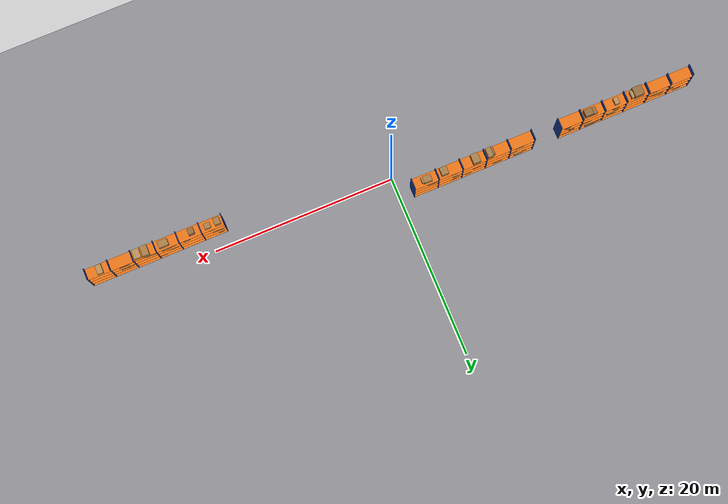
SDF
<sdf version="1.9">
 <world name="warehouse">
  <model name="ground_plane">
   <static>true</static>
   <link name="link">
    <collision name="collision">
     <geometry><plane><normal>0 0 1</normal><size>1 1</size></plane></geometry>
    </collision>
    <visual name="visual">
     <geometry><plane><normal>0 0 1</normal><size>200 100</size></plane></geometry>
     <material>
      <ambient>0.55 0.55 0.57 1</ambient>
      <diffuse>0.55 0.55 0.57 1</diffuse>
      <specular>0.1 0.1 0.1 1</specular>
     </material>
    </visual>
   </link>
  </model>
  <model name="rack15">
   <static>true</static>
   <link name="link">
    <collision name="up0_c">
     <pose>18.000 -2.100 2.250 0 0 0</pose>
     <geometry><box><size>0.080 1.200 4.500</size></box></geometry>
    </collision>
    <visual name="up0_v">
     <pose>18.000 -2.100 2.250 0 0 0</pose>
     <geometry><box><size>0.080 1.200 4.500</size></box></geometry>
     <material>
      <ambient>0.1 0.25 0.65 1</ambient>
      <diffuse>0.1 0.25 0.65 1</diffuse>
      <specular>0.1 0.1 0.1 1</specular>
     </material>
    </visual>
    <collision name="up1_c">
     <pose>20.500 -2.100 2.250 0 0 0</pose>
     <geometry><box><size>0.080 1.200 4.500</size></box></geometry>
    </collision>
    <visual name="up1_v">
     <pose>20.500 -2.100 2.250 0 0 0</pose>
     <geometry><box><size>0.080 1.200 4.500</size></box></geometry>
     <material>
      <ambient>0.1 0.25 0.65 1</ambient>
      <diffuse>0.1 0.25 0.65 1</diffuse>
      <specular>0.1 0.1 0.1 1</specular>
     </material>
    </visual>
    <collision name="up2_c">
     <pose>23.000 -2.100 2.250 0 0 0</pose>
     <geometry><box><size>0.080 1.200 4.500</size></box></geometry>
    </collision>
    <visual name="up2_v">
     <pose>23.000 -2.100 2.250 0 0 0</pose>
     <geometry><box><size>0.080 1.200 4.500</size></box></geometry>
     <material>
      <ambient>0.1 0.25 0.65 1</ambient>
      <diffuse>0.1 0.25 0.65 1</diffuse>
      <specular>0.1 0.1 0.1 1</specular>
     </material>
    </visual>
    <collision name="up3_c">
     <pose>25.500 -2.100 2.250 0 0 0</pose>
     <geometry><box><size>0.080 1.200 4.500</size></box></geometry>
    </collision>
    <visual name="up3_v">
     <pose>25.500 -2.100 2.250 0 0 0</pose>
     <geometry><box><size>0.080 1.200 4.500</size></box></geometry>
     <material>
      <ambient>0.1 0.25 0.65 1</ambient>
      <diffuse>0.1 0.25 0.65 1</diffuse>
      <specular>0.1 0.1 0.1 1</specular>
     </material>
    </visual>
    <collision name="up4_c">
     <pose>28.000 -2.100 2.250 0 0 0</pose>
     <geometry><box><size>0.080 1.200 4.500</size></box></geometry>
    </collision>
    <visual name="up4_v">
     <pose>28.000 -2.100 2.250 0 0 0</pose>
     <geometry><box><size>0.080 1.200 4.500</size></box></geometry>
     <material>
      <ambient>0.1 0.25 0.65 1</ambient>
      <diffuse>0.1 0.25 0.65 1</diffuse>
      <specular>0.1 0.1 0.1 1</specular>
     </material>
    </visual>
    <collision name="up5_c">
     <pose>30.500 -2.100 2.250 0 0 0</pose>
     <geometry><box><size>0.080 1.200 4.500</size></box></geometry>
    </collision>
    <visual name="up5_v">
     <pose>30.500 -2.100 2.250 0 0 0</pose>
     <geometry><box><size>0.080 1.200 4.500</size></box></geometry>
     <material>
      <ambient>0.1 0.25 0.65 1</ambient>
      <diffuse>0.1 0.25 0.65 1</diffuse>
      <specular>0.1 0.1 0.1 1</specular>
     </material>
    </visual>
    <collision name="up6_c">
     <pose>33.000 -2.100 2.250 0 0 0</pose>
     <geometry><box><size>0.080 1.200 4.500</size></box></geometry>
    </collision>
    <visual name="up6_v">
     <pose>33.000 -2.100 2.250 0 0 0</pose>
     <geometry><box><size>0.080 1.200 4.500</size></box></geometry>
     <material>
      <ambient>0.1 0.25 0.65 1</ambient>
      <diffuse>0.1 0.25 0.65 1</diffuse>
      <specular>0.1 0.1 0.1 1</specular>
     </material>
    </visual>
    <collision name="sh0_c">
     <pose>25.500 -2.100 0.150 0 0 0</pose>
     <geometry><box><size>15.000 1.200 0.050</size></box></geometry>
    </collision>
    <visual name="sh0_v">
     <pose>25.500 -2.100 0.150 0 0 0</pose>
     <geometry><box><size>15.000 1.200 0.050</size></box></geometry>
     <material>
      <ambient>0.9 0.45 0.1 1</ambient>
      <diffuse>0.9 0.45 0.1 1</diffuse>
      <specular>0.1 0.1 0.1 1</specular>
     </material>
    </visual>
    <collision name="sh1_c">
     <pose>25.500 -2.100 1.350 0 0 0</pose>
     <geometry><box><size>15.000 1.200 0.050</size></box></geometry>
    </collision>
    <visual name="sh1_v">
     <pose>25.500 -2.100 1.350 0 0 0</pose>
     <geometry><box><size>15.000 1.200 0.050</size></box></geometry>
     <material>
      <ambient>0.9 0.45 0.1 1</ambient>
      <diffuse>0.9 0.45 0.1 1</diffuse>
      <specular>0.1 0.1 0.1 1</specular>
     </material>
    </visual>
    <collision name="sh2_c">
     <pose>25.500 -2.100 2.550 0 0 0</pose>
     <geometry><box><size>15.000 1.200 0.050</size></box></geometry>
    </collision>
    <visual name="sh2_v">
     <pose>25.500 -2.100 2.550 0 0 0</pose>
     <geometry><box><size>15.000 1.200 0.050</size></box></geometry>
     <material>
      <ambient>0.9 0.45 0.1 1</ambient>
      <diffuse>0.9 0.45 0.1 1</diffuse>
      <specular>0.1 0.1 0.1 1</specular>
     </material>
    </visual>
    <collision name="sh3_c">
     <pose>25.500 -2.100 3.750 0 0 0</pose>
     <geometry><box><size>15.000 1.200 0.050</size></box></geometry>
    </collision>
    <visual name="sh3_v">
     <pose>25.500 -2.100 3.750 0 0 0</pose>
     <geometry><box><size>15.000 1.200 0.050</size></box></geometry>
     <material>
      <ambient>0.9 0.45 0.1 1</ambient>
      <diffuse>0.9 0.45 0.1 1</diffuse>
      <specular>0.1 0.1 0.1 1</specular>
     </material>
    </visual>
    <collision name="c0_c">
     <pose>18.590 -2.060 0.475 0 0 0</pose>
     <geometry><box><size>0.595 0.823 0.600</size></box></geometry>
    </collision>
    <visual name="c0_v">
     <pose>18.590 -2.060 0.475 0 0 0</pose>
     <geometry><box><size>0.595 0.823 0.600</size></box></geometry>
     <material>
      <ambient>0.65 0.48 0.28 1</ambient>
      <diffuse>0.65 0.48 0.28 1</diffuse>
      <specular>0.1 0.1 0.1 1</specular>
     </material>
    </visual>
    <collision name="c1_c">
     <pose>18.628 -2.143 1.686 0 0 0</pose>
     <geometry><box><size>0.807 0.997 0.623</size></box></geometry>
    </collision>
    <visual name="c1_v">
     <pose>18.628 -2.143 1.686 0 0 0</pose>
     <geometry><box><size>0.807 0.997 0.623</size></box></geometry>
     <material>
      <ambient>0.65 0.48 0.28 1</ambient>
      <diffuse>0.65 0.48 0.28 1</diffuse>
      <specular>0.1 0.1 0.1 1</specular>
     </material>
    </visual>
    <collision name="c2_c">
     <pose>19.178 -2.090 1.782 0 0 0</pose>
     <geometry><box><size>0.572 0.832 0.814</size></box></geometry>
    </collision>
    <visual name="c2_v">
     <pose>19.178 -2.090 1.782 0 0 0</pose>
     <geometry><box><size>0.572 0.832 0.814</size></box></geometry>
     <material>
      <ambient>0.65 0.48 0.28 1</ambient>
      <diffuse>0.65 0.48 0.28 1</diffuse>
      <specular>0.1 0.1 0.1 1</specular>
     </material>
    </visual>
    <collision name="c3_c">
     <pose>19.429 -2.059 2.829 0 0 0</pose>
     <geometry><box><size>0.615 0.722 0.507</size></box></geometry>
    </collision>
    <visual name="c3_v">
     <pose>19.429 -2.059 2.829 0 0 0</pose>
     <geometry><box><size>0.615 0.722 0.507</size></box></geometry>
     <material>
      <ambient>0.72 0.55 0.33 1</ambient>
      <diffuse>0.72 0.55 0.33 1</diffuse>
      <specular>0.1 0.1 0.1 1</specular>
     </material>
    </visual>
    <collision name="c4_c">
     <pose>19.707 -2.052 3.978 0 0 0</pose>
     <geometry><box><size>0.672 0.615 0.405</size></box></geometry>
    </collision>
    <visual name="c4_v">
     <pose>19.707 -2.052 3.978 0 0 0</pose>
     <geometry><box><size>0.672 0.615 0.405</size></box></geometry>
     <material>
      <ambient>0.65 0.48 0.28 1</ambient>
      <diffuse>0.65 0.48 0.28 1</diffuse>
      <specular>0.1 0.1 0.1 1</specular>
     </material>
    </visual>
    <collision name="c5_c">
     <pose>18.604 -2.083 4.140 0 0 0</pose>
     <geometry><box><size>0.624 0.758 0.731</size></box></geometry>
    </collision>
    <visual name="c5_v">
     <pose>18.604 -2.083 4.140 0 0 0</pose>
     <geometry><box><size>0.624 0.758 0.731</size></box></geometry>
     <material>
      <ambient>0.65 0.48 0.28 1</ambient>
      <diffuse>0.65 0.48 0.28 1</diffuse>
      <specular>0.1 0.1 0.1 1</specular>
     </material>
    </visual>
    <collision name="c6_c">
     <pose>22.258 -2.133 2.915 0 0 0</pose>
     <geometry><box><size>0.764 0.964 0.680</size></box></geometry>
    </collision>
    <visual name="c6_v">
     <pose>22.258 -2.133 2.915 0 0 0</pose>
     <geometry><box><size>0.764 0.964 0.680</size></box></geometry>
     <material>
      <ambient>0.58 0.42 0.24 1</ambient>
      <diffuse>0.58 0.42 0.24 1</diffuse>
      <specular>0.1 0.1 0.1 1</specular>
     </material>
    </visual>
    <collision name="c7_c">
     <pose>21.451 -2.092 4.193 0 0 0</pose>
     <geometry><box><size>0.634 0.631 0.836</size></box></geometry>
    </collision>
    <visual name="c7_v">
     <pose>21.451 -2.092 4.193 0 0 0</pose>
     <geometry><box><size>0.634 0.631 0.836</size></box></geometry>
     <material>
      <ambient>0.58 0.42 0.24 1</ambient>
      <diffuse>0.58 0.42 0.24 1</diffuse>
      <specular>0.1 0.1 0.1 1</specular>
     </material>
    </visual>
    <collision name="c8_c">
     <pose>25.010 -2.111 0.463 0 0 0</pose>
     <geometry><box><size>0.739 0.872 0.576</size></box></geometry>
    </collision>
    <visual name="c8_v">
     <pose>25.010 -2.111 0.463 0 0 0</pose>
     <geometry><box><size>0.739 0.872 0.576</size></box></geometry>
     <material>
      <ambient>0.72 0.55 0.33 1</ambient>
      <diffuse>0.72 0.55 0.33 1</diffuse>
      <specular>0.1 0.1 0.1 1</specular>
     </material>
    </visual>
    <collision name="c9_c">
     <pose>24.077 -2.060 1.695 0 0 0</pose>
     <geometry><box><size>0.667 0.690 0.640</size></box></geometry>
    </collision>
    <visual name="c9_v">
     <pose>24.077 -2.060 1.695 0 0 0</pose>
     <geometry><box><size>0.667 0.690 0.640</size></box></geometry>
     <material>
      <ambient>0.65 0.48 0.28 1</ambient>
      <diffuse>0.65 0.48 0.28 1</diffuse>
      <specular>0.1 0.1 0.1 1</specular>
     </material>
    </visual>
    <collision name="c10_c">
     <pose>23.723 -2.118 1.787 0 0 0</pose>
     <geometry><box><size>0.816 0.859 0.823</size></box></geometry>
    </collision>
    <visual name="c10_v">
     <pose>23.723 -2.118 1.787 0 0 0</pose>
     <geometry><box><size>0.816 0.859 0.823</size></box></geometry>
     <material>
      <ambient>0.65 0.48 0.28 1</ambient>
      <diffuse>0.65 0.48 0.28 1</diffuse>
      <specular>0.1 0.1 0.1 1</specular>
     </material>
    </visual>
    <collision name="c11_c">
     <pose>24.496 -2.137 2.791 0 0 0</pose>
     <geometry><box><size>0.999 1.040 0.432</size></box></geometry>
    </collision>
    <visual name="c11_v">
     <pose>24.496 -2.137 2.791 0 0 0</pose>
     <geometry><box><size>0.999 1.040 0.432</size></box></geometry>
     <material>
      <ambient>0.72 0.55 0.33 1</ambient>
      <diffuse>0.72 0.55 0.33 1</diffuse>
      <specular>0.1 0.1 0.1 1</specular>
     </material>
    </visual>
    <collision name="c12_c">
     <pose>23.834 -2.120 2.923 0 0 0</pose>
     <geometry><box><size>0.828 0.872 0.696</size></box></geometry>
    </collision>
    <visual name="c12_v">
     <pose>23.834 -2.120 2.923 0 0 0</pose>
     <geometry><box><size>0.828 0.872 0.696</size></box></geometry>
     <material>
      <ambient>0.72 0.55 0.33 1</ambient>
      <diffuse>0.72 0.55 0.33 1</diffuse>
      <specular>0.1 0.1 0.1 1</specular>
     </material>
    </visual>
    <collision name="c13_c">
     <pose>24.548 -2.061 4.109 0 0 0</pose>
     <geometry><box><size>1.060 0.733 0.668</size></box></geometry>
    </collision>
    <visual name="c13_v">
     <pose>24.548 -2.061 4.109 0 0 0</pose>
     <geometry><box><size>1.060 0.733 0.668</size></box></geometry>
     <material>
      <ambient>0.65 0.48 0.28 1</ambient>
      <diffuse>0.65 0.48 0.28 1</diffuse>
      <specular>0.1 0.1 0.1 1</specular>
     </material>
    </visual>
    <collision name="c14_c">
     <pose>26.260 -2.140 1.646 0 0 0</pose>
     <geometry><box><size>0.895 0.801 0.541</size></box></geometry>
    </collision>
    <visual name="c14_v">
     <pose>26.260 -2.140 1.646 0 0 0</pose>
     <geometry><box><size>0.895 0.801 0.541</size></box></geometry>
     <material>
      <ambient>0.65 0.48 0.28 1</ambient>
      <diffuse>0.65 0.48 0.28 1</diffuse>
      <specular>0.1 0.1 0.1 1</specular>
     </material>
    </visual>
    <collision name="c15_c">
     <pose>26.850 -2.069 2.980 0 0 0</pose>
     <geometry><box><size>0.785 0.688 0.809</size></box></geometry>
    </collision>
    <visual name="c15_v">
     <pose>26.850 -2.069 2.980 0 0 0</pose>
     <geometry><box><size>0.785 0.688 0.809</size></box></geometry>
     <material>
      <ambient>0.65 0.48 0.28 1</ambient>
      <diffuse>0.65 0.48 0.28 1</diffuse>
      <specular>0.1 0.1 0.1 1</specular>
     </material>
    </visual>
    <collision name="c16_c">
     <pose>26.218 -2.116 2.993 0 0 0</pose>
     <geometry><box><size>1.082 0.931 0.836</size></box></geometry>
    </collision>
    <visual name="c16_v">
     <pose>26.218 -2.116 2.993 0 0 0</pose>
     <geometry><box><size>1.082 0.931 0.836</size></box></geometry>
     <material>
      <ambient>0.72 0.55 0.33 1</ambient>
      <diffuse>0.72 0.55 0.33 1</diffuse>
      <specular>0.1 0.1 0.1 1</specular>
     </material>
    </visual>
    <collision name="c17_c">
     <pose>27.446 -2.124 4.037 0 0 0</pose>
     <geometry><box><size>0.760 1.029 0.524</size></box></geometry>
    </collision>
    <visual name="c17_v">
     <pose>27.446 -2.124 4.037 0 0 0</pose>
     <geometry><box><size>0.760 1.029 0.524</size></box></geometry>
     <material>
      <ambient>0.72 0.55 0.33 1</ambient>
      <diffuse>0.72 0.55 0.33 1</diffuse>
      <specular>0.1 0.1 0.1 1</specular>
     </material>
    </visual>
    <collision name="c18_c">
     <pose>26.555 -2.088 4.117 0 0 0</pose>
     <geometry><box><size>0.714 1.097 0.683</size></box></geometry>
    </collision>
    <visual name="c18_v">
     <pose>26.555 -2.088 4.117 0 0 0</pose>
     <geometry><box><size>0.714 1.097 0.683</size></box></geometry>
     <material>
      <ambient>0.65 0.48 0.28 1</ambient>
      <diffuse>0.65 0.48 0.28 1</diffuse>
      <specular>0.1 0.1 0.1 1</specular>
     </material>
    </visual>
    <collision name="c19_c">
     <pose>28.479 -2.074 1.722 0 0 0</pose>
     <geometry><box><size>0.545 0.810 0.693</size></box></geometry>
    </collision>
    <visual name="c19_v">
     <pose>28.479 -2.074 1.722 0 0 0</pose>
     <geometry><box><size>0.545 0.810 0.693</size></box></geometry>
     <material>
      <ambient>0.65 0.48 0.28 1</ambient>
      <diffuse>0.65 0.48 0.28 1</diffuse>
      <specular>0.1 0.1 0.1 1</specular>
     </material>
    </visual>
    <collision name="c20_c">
     <pose>29.185 -2.099 1.811 0 0 0</pose>
     <geometry><box><size>0.875 0.982 0.872</size></box></geometry>
    </collision>
    <visual name="c20_v">
     <pose>29.185 -2.099 1.811 0 0 0</pose>
     <geometry><box><size>0.875 0.982 0.872</size></box></geometry>
     <material>
      <ambient>0.72 0.55 0.33 1</ambient>
      <diffuse>0.72 0.55 0.33 1</diffuse>
      <specular>0.1 0.1 0.1 1</specular>
     </material>
    </visual>
    <collision name="c21_c">
     <pose>29.036 -2.093 2.929 0 0 0</pose>
     <geometry><box><size>1.006 0.862 0.708</size></box></geometry>
    </collision>
    <visual name="c21_v">
     <pose>29.036 -2.093 2.929 0 0 0</pose>
     <geometry><box><size>1.006 0.862 0.708</size></box></geometry>
     <material>
      <ambient>0.72 0.55 0.33 1</ambient>
      <diffuse>0.72 0.55 0.33 1</diffuse>
      <specular>0.1 0.1 0.1 1</specular>
     </material>
    </visual>
    <collision name="c22_c">
     <pose>29.235 -2.112 2.957 0 0 0</pose>
     <geometry><box><size>0.912 0.958 0.765</size></box></geometry>
    </collision>
    <visual name="c22_v">
     <pose>29.235 -2.112 2.957 0 0 0</pose>
     <geometry><box><size>0.912 0.958 0.765</size></box></geometry>
     <material>
      <ambient>0.58 0.42 0.24 1</ambient>
      <diffuse>0.58 0.42 0.24 1</diffuse>
      <specular>0.1 0.1 0.1 1</specular>
     </material>
    </visual>
    <collision name="c23_c">
     <pose>31.536 -2.086 4.018 0 0 0</pose>
     <geometry><box><size>0.631 0.970 0.485</size></box></geometry>
    </collision>
    <visual name="c23_v">
     <pose>31.536 -2.086 4.018 0 0 0</pose>
     <geometry><box><size>0.631 0.970 0.485</size></box></geometry>
     <material>
      <ambient>0.72 0.55 0.33 1</ambient>
      <diffuse>0.72 0.55 0.33 1</diffuse>
      <specular>0.1 0.1 0.1 1</specular>
     </material>
    </visual>
   </link>
  </model>
  <model name="rack16">
   <static>true</static>
   <link name="link">
    <collision name="up0_c">
     <pose>-33.000 2.100 2.250 0 0 0</pose>
     <geometry><box><size>0.080 1.200 4.500</size></box></geometry>
    </collision>
    <visual name="up0_v">
     <pose>-33.000 2.100 2.250 0 0 0</pose>
     <geometry><box><size>0.080 1.200 4.500</size></box></geometry>
     <material>
      <ambient>0.1 0.25 0.65 1</ambient>
      <diffuse>0.1 0.25 0.65 1</diffuse>
      <specular>0.1 0.1 0.1 1</specular>
     </material>
    </visual>
    <collision name="up1_c">
     <pose>-30.500 2.100 2.250 0 0 0</pose>
     <geometry><box><size>0.080 1.200 4.500</size></box></geometry>
    </collision>
    <visual name="up1_v">
     <pose>-30.500 2.100 2.250 0 0 0</pose>
     <geometry><box><size>0.080 1.200 4.500</size></box></geometry>
     <material>
      <ambient>0.1 0.25 0.65 1</ambient>
      <diffuse>0.1 0.25 0.65 1</diffuse>
      <specular>0.1 0.1 0.1 1</specular>
     </material>
    </visual>
    <collision name="up2_c">
     <pose>-28.000 2.100 2.250 0 0 0</pose>
     <geometry><box><size>0.080 1.200 4.500</size></box></geometry>
    </collision>
    <visual name="up2_v">
     <pose>-28.000 2.100 2.250 0 0 0</pose>
     <geometry><box><size>0.080 1.200 4.500</size></box></geometry>
     <material>
      <ambient>0.1 0.25 0.65 1</ambient>
      <diffuse>0.1 0.25 0.65 1</diffuse>
      <specular>0.1 0.1 0.1 1</specular>
     </material>
    </visual>
    <collision name="up3_c">
     <pose>-25.500 2.100 2.250 0 0 0</pose>
     <geometry><box><size>0.080 1.200 4.500</size></box></geometry>
    </collision>
    <visual name="up3_v">
     <pose>-25.500 2.100 2.250 0 0 0</pose>
     <geometry><box><size>0.080 1.200 4.500</size></box></geometry>
     <material>
      <ambient>0.1 0.25 0.65 1</ambient>
      <diffuse>0.1 0.25 0.65 1</diffuse>
      <specular>0.1 0.1 0.1 1</specular>
     </material>
    </visual>
    <collision name="up4_c">
     <pose>-23.000 2.100 2.250 0 0 0</pose>
     <geometry><box><size>0.080 1.200 4.500</size></box></geometry>
    </collision>
    <visual name="up4_v">
     <pose>-23.000 2.100 2.250 0 0 0</pose>
     <geometry><box><size>0.080 1.200 4.500</size></box></geometry>
     <material>
      <ambient>0.1 0.25 0.65 1</ambient>
      <diffuse>0.1 0.25 0.65 1</diffuse>
      <specular>0.1 0.1 0.1 1</specular>
     </material>
    </visual>
    <collision name="up5_c">
     <pose>-20.500 2.100 2.250 0 0 0</pose>
     <geometry><box><size>0.080 1.200 4.500</size></box></geometry>
    </collision>
    <visual name="up5_v">
     <pose>-20.500 2.100 2.250 0 0 0</pose>
     <geometry><box><size>0.080 1.200 4.500</size></box></geometry>
     <material>
      <ambient>0.1 0.25 0.65 1</ambient>
      <diffuse>0.1 0.25 0.65 1</diffuse>
      <specular>0.1 0.1 0.1 1</specular>
     </material>
    </visual>
    <collision name="up6_c">
     <pose>-18.000 2.100 2.250 0 0 0</pose>
     <geometry><box><size>0.080 1.200 4.500</size></box></geometry>
    </collision>
    <visual name="up6_v">
     <pose>-18.000 2.100 2.250 0 0 0</pose>
     <geometry><box><size>0.080 1.200 4.500</size></box></geometry>
     <material>
      <ambient>0.1 0.25 0.65 1</ambient>
      <diffuse>0.1 0.25 0.65 1</diffuse>
      <specular>0.1 0.1 0.1 1</specular>
     </material>
    </visual>
    <collision name="sh0_c">
     <pose>-25.500 2.100 0.150 0 0 0</pose>
     <geometry><box><size>15.000 1.200 0.050</size></box></geometry>
    </collision>
    <visual name="sh0_v">
     <pose>-25.500 2.100 0.150 0 0 0</pose>
     <geometry><box><size>15.000 1.200 0.050</size></box></geometry>
     <material>
      <ambient>0.9 0.45 0.1 1</ambient>
      <diffuse>0.9 0.45 0.1 1</diffuse>
      <specular>0.1 0.1 0.1 1</specular>
     </material>
    </visual>
    <collision name="sh1_c">
     <pose>-25.500 2.100 1.350 0 0 0</pose>
     <geometry><box><size>15.000 1.200 0.050</size></box></geometry>
    </collision>
    <visual name="sh1_v">
     <pose>-25.500 2.100 1.350 0 0 0</pose>
     <geometry><box><size>15.000 1.200 0.050</size></box></geometry>
     <material>
      <ambient>0.9 0.45 0.1 1</ambient>
      <diffuse>0.9 0.45 0.1 1</diffuse>
      <specular>0.1 0.1 0.1 1</specular>
     </material>
    </visual>
    <collision name="sh2_c">
     <pose>-25.500 2.100 2.550 0 0 0</pose>
     <geometry><box><size>15.000 1.200 0.050</size></box></geometry>
    </collision>
    <visual name="sh2_v">
     <pose>-25.500 2.100 2.550 0 0 0</pose>
     <geometry><box><size>15.000 1.200 0.050</size></box></geometry>
     <material>
      <ambient>0.9 0.45 0.1 1</ambient>
      <diffuse>0.9 0.45 0.1 1</diffuse>
      <specular>0.1 0.1 0.1 1</specular>
     </material>
    </visual>
    <collision name="sh3_c">
     <pose>-25.500 2.100 3.750 0 0 0</pose>
     <geometry><box><size>15.000 1.200 0.050</size></box></geometry>
    </collision>
    <visual name="sh3_v">
     <pose>-25.500 2.100 3.750 0 0 0</pose>
     <geometry><box><size>15.000 1.200 0.050</size></box></geometry>
     <material>
      <ambient>0.9 0.45 0.1 1</ambient>
      <diffuse>0.9 0.45 0.1 1</diffuse>
      <specular>0.1 0.1 0.1 1</specular>
     </material>
    </visual>
    <collision name="c0_c">
     <pose>-31.766 2.058 0.401 0 0 0</pose>
     <geometry><box><size>0.899 1.023 0.451</size></box></geometry>
    </collision>
    <visual name="c0_v">
     <pose>-31.766 2.058 0.401 0 0 0</pose>
     <geometry><box><size>0.899 1.023 0.451</size></box></geometry>
     <material>
      <ambient>0.58 0.42 0.24 1</ambient>
      <diffuse>0.58 0.42 0.24 1</diffuse>
      <specular>0.1 0.1 0.1 1</specular>
     </material>
    </visual>
    <collision name="c1_c">
     <pose>-32.086 2.104 0.384 0 0 0</pose>
     <geometry><box><size>0.520 0.609 0.418</size></box></geometry>
    </collision>
    <visual name="c1_v">
     <pose>-32.086 2.104 0.384 0 0 0</pose>
     <geometry><box><size>0.520 0.609 0.418</size></box></geometry>
     <material>
      <ambient>0.58 0.42 0.24 1</ambient>
      <diffuse>0.58 0.42 0.24 1</diffuse>
      <specular>0.1 0.1 0.1 1</specular>
     </material>
    </visual>
    <collision name="c2_c">
     <pose>-30.913 2.085 1.634 0 0 0</pose>
     <geometry><box><size>0.510 1.037 0.519</size></box></geometry>
    </collision>
    <visual name="c2_v">
     <pose>-30.913 2.085 1.634 0 0 0</pose>
     <geometry><box><size>0.510 1.037 0.519</size></box></geometry>
     <material>
      <ambient>0.58 0.42 0.24 1</ambient>
      <diffuse>0.58 0.42 0.24 1</diffuse>
      <specular>0.1 0.1 0.1 1</specular>
     </material>
    </visual>
    <collision name="c3_c">
     <pose>-32.362 2.068 1.625 0 0 0</pose>
     <geometry><box><size>0.535 0.820 0.499</size></box></geometry>
    </collision>
    <visual name="c3_v">
     <pose>-32.362 2.068 1.625 0 0 0</pose>
     <geometry><box><size>0.535 0.820 0.499</size></box></geometry>
     <material>
      <ambient>0.65 0.48 0.28 1</ambient>
      <diffuse>0.65 0.48 0.28 1</diffuse>
      <specular>0.1 0.1 0.1 1</specular>
     </material>
    </visual>
    <collision name="c4_c">
     <pose>-31.707 2.054 2.979 0 0 0</pose>
     <geometry><box><size>0.692 0.827 0.808</size></box></geometry>
    </collision>
    <visual name="c4_v">
     <pose>-31.707 2.054 2.979 0 0 0</pose>
     <geometry><box><size>0.692 0.827 0.808</size></box></geometry>
     <material>
      <ambient>0.72 0.55 0.33 1</ambient>
      <diffuse>0.72 0.55 0.33 1</diffuse>
      <specular>0.1 0.1 0.1 1</specular>
     </material>
    </visual>
    <collision name="c5_c">
     <pose>-29.456 2.090 0.586 0 0 0</pose>
     <geometry><box><size>0.613 0.620 0.822</size></box></geometry>
    </collision>
    <visual name="c5_v">
     <pose>-29.456 2.090 0.586 0 0 0</pose>
     <geometry><box><size>0.613 0.620 0.822</size></box></geometry>
     <material>
      <ambient>0.72 0.55 0.33 1</ambient>
      <diffuse>0.72 0.55 0.33 1</diffuse>
      <specular>0.1 0.1 0.1 1</specular>
     </material>
    </visual>
    <collision name="c6_c">
     <pose>-29.940 2.133 0.606 0 0 0</pose>
     <geometry><box><size>0.663 0.768 0.863</size></box></geometry>
    </collision>
    <visual name="c6_v">
     <pose>-29.940 2.133 0.606 0 0 0</pose>
     <geometry><box><size>0.663 0.768 0.863</size></box></geometry>
     <material>
      <ambient>0.58 0.42 0.24 1</ambient>
      <diffuse>0.58 0.42 0.24 1</diffuse>
      <specular>0.1 0.1 0.1 1</specular>
     </material>
    </visual>
    <collision name="c7_c">
     <pose>-28.860 2.112 1.769 0 0 0</pose>
     <geometry><box><size>0.596 0.872 0.789</size></box></geometry>
    </collision>
    <visual name="c7_v">
     <pose>-28.860 2.112 1.769 0 0 0</pose>
     <geometry><box><size>0.596 0.872 0.789</size></box></geometry>
     <material>
      <ambient>0.72 0.55 0.33 1</ambient>
      <diffuse>0.72 0.55 0.33 1</diffuse>
      <specular>0.1 0.1 0.1 1</specular>
     </material>
    </visual>
    <collision name="c8_c">
     <pose>-29.434 2.121 1.646 0 0 0</pose>
     <geometry><box><size>1.094 0.974 0.543</size></box></geometry>
    </collision>
    <visual name="c8_v">
     <pose>-29.434 2.121 1.646 0 0 0</pose>
     <geometry><box><size>1.094 0.974 0.543</size></box></geometry>
     <material>
      <ambient>0.72 0.55 0.33 1</ambient>
      <diffuse>0.72 0.55 0.33 1</diffuse>
      <specular>0.1 0.1 0.1 1</specular>
     </material>
    </visual>
    <collision name="c9_c">
     <pose>-28.891 2.103 2.978 0 0 0</pose>
     <geometry><box><size>0.644 0.871 0.806</size></box></geometry>
    </collision>
    <visual name="c9_v">
     <pose>-28.891 2.103 2.978 0 0 0</pose>
     <geometry><box><size>0.644 0.871 0.806</size></box></geometry>
     <material>
      <ambient>0.72 0.55 0.33 1</ambient>
      <diffuse>0.72 0.55 0.33 1</diffuse>
      <specular>0.1 0.1 0.1 1</specular>
     </material>
    </visual>
    <collision name="c10_c">
     <pose>-28.577 2.066 2.841 0 0 0</pose>
     <geometry><box><size>0.512 0.929 0.532</size></box></geometry>
    </collision>
    <visual name="c10_v">
     <pose>-28.577 2.066 2.841 0 0 0</pose>
     <geometry><box><size>0.512 0.929 0.532</size></box></geometry>
     <material>
      <ambient>0.58 0.42 0.24 1</ambient>
      <diffuse>0.58 0.42 0.24 1</diffuse>
      <specular>0.1 0.1 0.1 1</specular>
     </material>
    </visual>
    <collision name="c11_c">
     <pose>-27.470 2.097 1.589 0 0 0</pose>
     <geometry><box><size>0.632 0.656 0.428</size></box></geometry>
    </collision>
    <visual name="c11_v">
     <pose>-27.470 2.097 1.589 0 0 0</pose>
     <geometry><box><size>0.632 0.656 0.428</size></box></geometry>
     <material>
      <ambient>0.58 0.42 0.24 1</ambient>
      <diffuse>0.58 0.42 0.24 1</diffuse>
      <specular>0.1 0.1 0.1 1</specular>
     </material>
    </visual>
    <collision name="c12_c">
     <pose>-26.323 2.071 2.893 0 0 0</pose>
     <geometry><box><size>0.535 0.626 0.636</size></box></geometry>
    </collision>
    <visual name="c12_v">
     <pose>-26.323 2.071 2.893 0 0 0</pose>
     <geometry><box><size>0.535 0.626 0.636</size></box></geometry>
     <material>
      <ambient>0.58 0.42 0.24 1</ambient>
      <diffuse>0.58 0.42 0.24 1</diffuse>
      <specular>0.1 0.1 0.1 1</specular>
     </material>
    </visual>
    <collision name="c13_c">
     <pose>-26.890 2.058 4.209 0 0 0</pose>
     <geometry><box><size>1.039 1.037 0.868</size></box></geometry>
    </collision>
    <visual name="c13_v">
     <pose>-26.890 2.058 4.209 0 0 0</pose>
     <geometry><box><size>1.039 1.037 0.868</size></box></geometry>
     <material>
      <ambient>0.58 0.42 0.24 1</ambient>
      <diffuse>0.58 0.42 0.24 1</diffuse>
      <specular>0.1 0.1 0.1 1</specular>
     </material>
    </visual>
    <collision name="c14_c">
     <pose>-26.429 2.123 4.082 0 0 0</pose>
     <geometry><box><size>0.765 0.775 0.614</size></box></geometry>
    </collision>
    <visual name="c14_v">
     <pose>-26.429 2.123 4.082 0 0 0</pose>
     <geometry><box><size>0.765 0.775 0.614</size></box></geometry>
     <material>
      <ambient>0.72 0.55 0.33 1</ambient>
      <diffuse>0.72 0.55 0.33 1</diffuse>
      <specular>0.1 0.1 0.1 1</specular>
     </material>
    </visual>
    <collision name="c15_c">
     <pose>-23.451 2.057 0.616 0 0 0</pose>
     <geometry><box><size>0.591 0.626 0.881</size></box></geometry>
    </collision>
    <visual name="c15_v">
     <pose>-23.451 2.057 0.616 0 0 0</pose>
     <geometry><box><size>0.591 0.626 0.881</size></box></geometry>
     <material>
      <ambient>0.58 0.42 0.24 1</ambient>
      <diffuse>0.58 0.42 0.24 1</diffuse>
      <specular>0.1 0.1 0.1 1</specular>
     </material>
    </visual>
    <collision name="c16_c">
     <pose>-23.931 2.134 1.611 0 0 0</pose>
     <geometry><box><size>0.846 1.085 0.473</size></box></geometry>
    </collision>
    <visual name="c16_v">
     <pose>-23.931 2.134 1.611 0 0 0</pose>
     <geometry><box><size>0.846 1.085 0.473</size></box></geometry>
     <material>
      <ambient>0.65 0.48 0.28 1</ambient>
      <diffuse>0.65 0.48 0.28 1</diffuse>
      <specular>0.1 0.1 0.1 1</specular>
     </material>
    </visual>
    <collision name="c17_c">
     <pose>-24.460 2.103 1.751 0 0 0</pose>
     <geometry><box><size>0.819 0.839 0.752</size></box></geometry>
    </collision>
    <visual name="c17_v">
     <pose>-24.460 2.103 1.751 0 0 0</pose>
     <geometry><box><size>0.819 0.839 0.752</size></box></geometry>
     <material>
      <ambient>0.58 0.42 0.24 1</ambient>
      <diffuse>0.58 0.42 0.24 1</diffuse>
      <specular>0.1 0.1 0.1 1</specular>
     </material>
    </visual>
    <collision name="c18_c">
     <pose>-24.412 2.099 2.810 0 0 0</pose>
     <geometry><box><size>0.679 1.025 0.469</size></box></geometry>
    </collision>
    <visual name="c18_v">
     <pose>-24.412 2.099 2.810 0 0 0</pose>
     <geometry><box><size>0.679 1.025 0.469</size></box></geometry>
     <material>
      <ambient>0.58 0.42 0.24 1</ambient>
      <diffuse>0.58 0.42 0.24 1</diffuse>
      <specular>0.1 0.1 0.1 1</specular>
     </material>
    </visual>
    <collision name="c19_c">
     <pose>-24.435 2.101 4.028 0 0 0</pose>
     <geometry><box><size>0.515 0.724 0.507</size></box></geometry>
    </collision>
    <visual name="c19_v">
     <pose>-24.435 2.101 4.028 0 0 0</pose>
     <geometry><box><size>0.515 0.724 0.507</size></box></geometry>
     <material>
      <ambient>0.72 0.55 0.33 1</ambient>
      <diffuse>0.72 0.55 0.33 1</diffuse>
      <specular>0.1 0.1 0.1 1</specular>
     </material>
    </visual>
    <collision name="c20_c">
     <pose>-21.612 2.128 0.395 0 0 0</pose>
     <geometry><box><size>1.055 1.050 0.441</size></box></geometry>
    </collision>
    <visual name="c20_v">
     <pose>-21.612 2.128 0.395 0 0 0</pose>
     <geometry><box><size>1.055 1.050 0.441</size></box></geometry>
     <material>
      <ambient>0.58 0.42 0.24 1</ambient>
      <diffuse>0.58 0.42 0.24 1</diffuse>
      <specular>0.1 0.1 0.1 1</specular>
     </material>
    </visual>
    <collision name="c21_c">
     <pose>-22.339 2.068 0.398 0 0 0</pose>
     <geometry><box><size>0.946 1.074 0.445</size></box></geometry>
    </collision>
    <visual name="c21_v">
     <pose>-22.339 2.068 0.398 0 0 0</pose>
     <geometry><box><size>0.946 1.074 0.445</size></box></geometry>
     <material>
      <ambient>0.65 0.48 0.28 1</ambient>
      <diffuse>0.65 0.48 0.28 1</diffuse>
      <specular>0.1 0.1 0.1 1</specular>
     </material>
    </visual>
    <collision name="c22_c">
     <pose>-21.256 2.118 1.750 0 0 0</pose>
     <geometry><box><size>0.928 0.856 0.749</size></box></geometry>
    </collision>
    <visual name="c22_v">
     <pose>-21.256 2.118 1.750 0 0 0</pose>
     <geometry><box><size>0.928 0.856 0.749</size></box></geometry>
     <material>
      <ambient>0.58 0.42 0.24 1</ambient>
      <diffuse>0.58 0.42 0.24 1</diffuse>
      <specular>0.1 0.1 0.1 1</specular>
     </material>
    </visual>
    <collision name="c23_c">
     <pose>-22.156 2.123 1.674 0 0 0</pose>
     <geometry><box><size>0.731 0.653 0.598</size></box></geometry>
    </collision>
    <visual name="c23_v">
     <pose>-22.156 2.123 1.674 0 0 0</pose>
     <geometry><box><size>0.731 0.653 0.598</size></box></geometry>
     <material>
      <ambient>0.72 0.55 0.33 1</ambient>
      <diffuse>0.72 0.55 0.33 1</diffuse>
      <specular>0.1 0.1 0.1 1</specular>
     </material>
    </visual>
    <collision name="c24_c">
     <pose>-21.234 2.141 4.168 0 0 0</pose>
     <geometry><box><size>0.882 0.745 0.786</size></box></geometry>
    </collision>
    <visual name="c24_v">
     <pose>-21.234 2.141 4.168 0 0 0</pose>
     <geometry><box><size>0.882 0.745 0.786</size></box></geometry>
     <material>
      <ambient>0.58 0.42 0.24 1</ambient>
      <diffuse>0.58 0.42 0.24 1</diffuse>
      <specular>0.1 0.1 0.1 1</specular>
     </material>
    </visual>
    <collision name="c25_c">
     <pose>-21.703 2.142 3.978 0 0 0</pose>
     <geometry><box><size>0.873 0.759 0.405</size></box></geometry>
    </collision>
    <visual name="c25_v">
     <pose>-21.703 2.142 3.978 0 0 0</pose>
     <geometry><box><size>0.873 0.759 0.405</size></box></geometry>
     <material>
      <ambient>0.58 0.42 0.24 1</ambient>
      <diffuse>0.58 0.42 0.24 1</diffuse>
      <specular>0.1 0.1 0.1 1</specular>
     </material>
    </visual>
    <collision name="c26_c">
     <pose>-18.974 2.060 0.589 0 0 0</pose>
     <geometry><box><size>0.850 0.942 0.827</size></box></geometry>
    </collision>
    <visual name="c26_v">
     <pose>-18.974 2.060 0.589 0 0 0</pose>
     <geometry><box><size>0.850 0.942 0.827</size></box></geometry>
     <material>
      <ambient>0.72 0.55 0.33 1</ambient>
      <diffuse>0.72 0.55 0.33 1</diffuse>
      <specular>0.1 0.1 0.1 1</specular>
     </material>
    </visual>
    <collision name="c27_c">
     <pose>-19.414 2.147 1.714 0 0 0</pose>
     <geometry><box><size>0.507 1.067 0.679</size></box></geometry>
    </collision>
    <visual name="c27_v">
     <pose>-19.414 2.147 1.714 0 0 0</pose>
     <geometry><box><size>0.507 1.067 0.679</size></box></geometry>
     <material>
      <ambient>0.65 0.48 0.28 1</ambient>
      <diffuse>0.65 0.48 0.28 1</diffuse>
      <specular>0.1 0.1 0.1 1</specular>
     </material>
    </visual>
    <collision name="c28_c">
     <pose>-18.905 2.091 2.846 0 0 0</pose>
     <geometry><box><size>0.586 1.070 0.543</size></box></geometry>
    </collision>
    <visual name="c28_v">
     <pose>-18.905 2.091 2.846 0 0 0</pose>
     <geometry><box><size>0.586 1.070 0.543</size></box></geometry>
     <material>
      <ambient>0.58 0.42 0.24 1</ambient>
      <diffuse>0.58 0.42 0.24 1</diffuse>
      <specular>0.1 0.1 0.1 1</specular>
     </material>
    </visual>
   </link>
  </model>
  <model name="rack17">
   <static>true</static>
   <link name="link">
    <collision name="up0_c">
     <pose>-15.000 2.100 2.250 0 0 0</pose>
     <geometry><box><size>0.080 1.200 4.500</size></box></geometry>
    </collision>
    <visual name="up0_v">
     <pose>-15.000 2.100 2.250 0 0 0</pose>
     <geometry><box><size>0.080 1.200 4.500</size></box></geometry>
     <material>
      <ambient>0.1 0.25 0.65 1</ambient>
      <diffuse>0.1 0.25 0.65 1</diffuse>
      <specular>0.1 0.1 0.1 1</specular>
     </material>
    </visual>
    <collision name="up1_c">
     <pose>-12.300 2.100 2.250 0 0 0</pose>
     <geometry><box><size>0.080 1.200 4.500</size></box></geometry>
    </collision>
    <visual name="up1_v">
     <pose>-12.300 2.100 2.250 0 0 0</pose>
     <geometry><box><size>0.080 1.200 4.500</size></box></geometry>
     <material>
      <ambient>0.1 0.25 0.65 1</ambient>
      <diffuse>0.1 0.25 0.65 1</diffuse>
      <specular>0.1 0.1 0.1 1</specular>
     </material>
    </visual>
    <collision name="up2_c">
     <pose>-9.600 2.100 2.250 0 0 0</pose>
     <geometry><box><size>0.080 1.200 4.500</size></box></geometry>
    </collision>
    <visual name="up2_v">
     <pose>-9.600 2.100 2.250 0 0 0</pose>
     <geometry><box><size>0.080 1.200 4.500</size></box></geometry>
     <material>
      <ambient>0.1 0.25 0.65 1</ambient>
      <diffuse>0.1 0.25 0.65 1</diffuse>
      <specular>0.1 0.1 0.1 1</specular>
     </material>
    </visual>
    <collision name="up3_c">
     <pose>-6.900 2.100 2.250 0 0 0</pose>
     <geometry><box><size>0.080 1.200 4.500</size></box></geometry>
    </collision>
    <visual name="up3_v">
     <pose>-6.900 2.100 2.250 0 0 0</pose>
     <geometry><box><size>0.080 1.200 4.500</size></box></geometry>
     <material>
      <ambient>0.1 0.25 0.65 1</ambient>
      <diffuse>0.1 0.25 0.65 1</diffuse>
      <specular>0.1 0.1 0.1 1</specular>
     </material>
    </visual>
    <collision name="up4_c">
     <pose>-4.200 2.100 2.250 0 0 0</pose>
     <geometry><box><size>0.080 1.200 4.500</size></box></geometry>
    </collision>
    <visual name="up4_v">
     <pose>-4.200 2.100 2.250 0 0 0</pose>
     <geometry><box><size>0.080 1.200 4.500</size></box></geometry>
     <material>
      <ambient>0.1 0.25 0.65 1</ambient>
      <diffuse>0.1 0.25 0.65 1</diffuse>
      <specular>0.1 0.1 0.1 1</specular>
     </material>
    </visual>
    <collision name="up5_c">
     <pose>-1.500 2.100 2.250 0 0 0</pose>
     <geometry><box><size>0.080 1.200 4.500</size></box></geometry>
    </collision>
    <visual name="up5_v">
     <pose>-1.500 2.100 2.250 0 0 0</pose>
     <geometry><box><size>0.080 1.200 4.500</size></box></geometry>
     <material>
      <ambient>0.1 0.25 0.65 1</ambient>
      <diffuse>0.1 0.25 0.65 1</diffuse>
      <specular>0.1 0.1 0.1 1</specular>
     </material>
    </visual>
    <collision name="sh0_c">
     <pose>-8.250 2.100 0.150 0 0 0</pose>
     <geometry><box><size>13.500 1.200 0.050</size></box></geometry>
    </collision>
    <visual name="sh0_v">
     <pose>-8.250 2.100 0.150 0 0 0</pose>
     <geometry><box><size>13.500 1.200 0.050</size></box></geometry>
     <material>
      <ambient>0.9 0.45 0.1 1</ambient>
      <diffuse>0.9 0.45 0.1 1</diffuse>
      <specular>0.1 0.1 0.1 1</specular>
     </material>
    </visual>
    <collision name="sh1_c">
     <pose>-8.250 2.100 1.350 0 0 0</pose>
     <geometry><box><size>13.500 1.200 0.050</size></box></geometry>
    </collision>
    <visual name="sh1_v">
     <pose>-8.250 2.100 1.350 0 0 0</pose>
     <geometry><box><size>13.500 1.200 0.050</size></box></geometry>
     <material>
      <ambient>0.9 0.45 0.1 1</ambient>
      <diffuse>0.9 0.45 0.1 1</diffuse>
      <specular>0.1 0.1 0.1 1</specular>
     </material>
    </visual>
    <collision name="sh2_c">
     <pose>-8.250 2.100 2.550 0 0 0</pose>
     <geometry><box><size>13.500 1.200 0.050</size></box></geometry>
    </collision>
    <visual name="sh2_v">
     <pose>-8.250 2.100 2.550 0 0 0</pose>
     <geometry><box><size>13.500 1.200 0.050</size></box></geometry>
     <material>
      <ambient>0.9 0.45 0.1 1</ambient>
      <diffuse>0.9 0.45 0.1 1</diffuse>
      <specular>0.1 0.1 0.1 1</specular>
     </material>
    </visual>
    <collision name="sh3_c">
     <pose>-8.250 2.100 3.750 0 0 0</pose>
     <geometry><box><size>13.500 1.200 0.050</size></box></geometry>
    </collision>
    <visual name="sh3_v">
     <pose>-8.250 2.100 3.750 0 0 0</pose>
     <geometry><box><size>13.500 1.200 0.050</size></box></geometry>
     <material>
      <ambient>0.9 0.45 0.1 1</ambient>
      <diffuse>0.9 0.45 0.1 1</diffuse>
      <specular>0.1 0.1 0.1 1</specular>
     </material>
    </visual>
    <collision name="c0_c">
     <pose>-13.354 2.128 0.439 0 0 0</pose>
     <geometry><box><size>0.850 1.088 0.528</size></box></geometry>
    </collision>
    <visual name="c0_v">
     <pose>-13.354 2.128 0.439 0 0 0</pose>
     <geometry><box><size>0.850 1.088 0.528</size></box></geometry>
     <material>
      <ambient>0.72 0.55 0.33 1</ambient>
      <diffuse>0.72 0.55 0.33 1</diffuse>
      <specular>0.1 0.1 0.1 1</specular>
     </material>
    </visual>
    <collision name="c1_c">
     <pose>-13.945 2.095 0.603 0 0 0</pose>
     <geometry><box><size>0.823 0.897 0.857</size></box></geometry>
    </collision>
    <visual name="c1_v">
     <pose>-13.945 2.095 0.603 0 0 0</pose>
     <geometry><box><size>0.823 0.897 0.857</size></box></geometry>
     <material>
      <ambient>0.58 0.42 0.24 1</ambient>
      <diffuse>0.58 0.42 0.24 1</diffuse>
      <specular>0.1 0.1 0.1 1</specular>
     </material>
    </visual>
    <collision name="c2_c">
     <pose>-12.878 2.089 1.726 0 0 0</pose>
     <geometry><box><size>0.802 0.921 0.703</size></box></geometry>
    </collision>
    <visual name="c2_v">
     <pose>-12.878 2.089 1.726 0 0 0</pose>
     <geometry><box><size>0.802 0.921 0.703</size></box></geometry>
     <material>
      <ambient>0.72 0.55 0.33 1</ambient>
      <diffuse>0.72 0.55 0.33 1</diffuse>
      <specular>0.1 0.1 0.1 1</specular>
     </material>
    </visual>
    <collision name="c3_c">
     <pose>-13.447 2.077 2.815 0 0 0</pose>
     <geometry><box><size>0.982 0.970 0.480</size></box></geometry>
    </collision>
    <visual name="c3_v">
     <pose>-13.447 2.077 2.815 0 0 0</pose>
     <geometry><box><size>0.982 0.970 0.480</size></box></geometry>
     <material>
      <ambient>0.72 0.55 0.33 1</ambient>
      <diffuse>0.72 0.55 0.33 1</diffuse>
      <specular>0.1 0.1 0.1 1</specular>
     </material>
    </visual>
    <collision name="c4_c">
     <pose>-10.998 2.065 0.585 0 0 0</pose>
     <geometry><box><size>1.000 1.062 0.821</size></box></geometry>
    </collision>
    <visual name="c4_v">
     <pose>-10.998 2.065 0.585 0 0 0</pose>
     <geometry><box><size>1.000 1.062 0.821</size></box></geometry>
     <material>
      <ambient>0.65 0.48 0.28 1</ambient>
      <diffuse>0.65 0.48 0.28 1</diffuse>
      <specular>0.1 0.1 0.1 1</specular>
     </material>
    </visual>
    <collision name="c5_c">
     <pose>-10.525 2.108 1.808 0 0 0</pose>
     <geometry><box><size>0.635 0.654 0.866</size></box></geometry>
    </collision>
    <visual name="c5_v">
     <pose>-10.525 2.108 1.808 0 0 0</pose>
     <geometry><box><size>0.635 0.654 0.866</size></box></geometry>
     <material>
      <ambient>0.65 0.48 0.28 1</ambient>
      <diffuse>0.65 0.48 0.28 1</diffuse>
      <specular>0.1 0.1 0.1 1</specular>
     </material>
    </visual>
    <collision name="c6_c">
     <pose>-10.032 2.111 4.203 0 0 0</pose>
     <geometry><box><size>0.568 1.021 0.855</size></box></geometry>
    </collision>
    <visual name="c6_v">
     <pose>-10.032 2.111 4.203 0 0 0</pose>
     <geometry><box><size>0.568 1.021 0.855</size></box></geometry>
     <material>
      <ambient>0.65 0.48 0.28 1</ambient>
      <diffuse>0.65 0.48 0.28 1</diffuse>
      <specular>0.1 0.1 0.1 1</specular>
     </material>
    </visual>
    <collision name="c7_c">
     <pose>-10.254 2.067 4.194 0 0 0</pose>
     <geometry><box><size>0.596 0.887 0.838</size></box></geometry>
    </collision>
    <visual name="c7_v">
     <pose>-10.254 2.067 4.194 0 0 0</pose>
     <geometry><box><size>0.596 0.887 0.838</size></box></geometry>
     <material>
      <ambient>0.58 0.42 0.24 1</ambient>
      <diffuse>0.58 0.42 0.24 1</diffuse>
      <specular>0.1 0.1 0.1 1</specular>
     </material>
    </visual>
    <collision name="c8_c">
     <pose>-7.693 2.055 0.608 0 0 0</pose>
     <geometry><box><size>0.696 1.028 0.865</size></box></geometry>
    </collision>
    <visual name="c8_v">
     <pose>-7.693 2.055 0.608 0 0 0</pose>
     <geometry><box><size>0.696 1.028 0.865</size></box></geometry>
     <material>
      <ambient>0.65 0.48 0.28 1</ambient>
      <diffuse>0.65 0.48 0.28 1</diffuse>
      <specular>0.1 0.1 0.1 1</specular>
     </material>
    </visual>
    <collision name="c9_c">
     <pose>-9.128 2.078 1.793 0 0 0</pose>
     <geometry><box><size>0.560 0.644 0.836</size></box></geometry>
    </collision>
    <visual name="c9_v">
     <pose>-9.128 2.078 1.793 0 0 0</pose>
     <geometry><box><size>0.560 0.644 0.836</size></box></geometry>
     <material>
      <ambient>0.72 0.55 0.33 1</ambient>
      <diffuse>0.72 0.55 0.33 1</diffuse>
      <specular>0.1 0.1 0.1 1</specular>
     </material>
    </visual>
    <collision name="c10_c">
     <pose>-8.654 2.088 1.765 0 0 0</pose>
     <geometry><box><size>0.855 0.911 0.779</size></box></geometry>
    </collision>
    <visual name="c10_v">
     <pose>-8.654 2.088 1.765 0 0 0</pose>
     <geometry><box><size>0.855 0.911 0.779</size></box></geometry>
     <material>
      <ambient>0.58 0.42 0.24 1</ambient>
      <diffuse>0.58 0.42 0.24 1</diffuse>
      <specular>0.1 0.1 0.1 1</specular>
     </material>
    </visual>
    <collision name="c11_c">
     <pose>-8.477 2.121 4.210 0 0 0</pose>
     <geometry><box><size>0.806 1.043 0.869</size></box></geometry>
    </collision>
    <visual name="c11_v">
     <pose>-8.477 2.121 4.210 0 0 0</pose>
     <geometry><box><size>0.806 1.043 0.869</size></box></geometry>
     <material>
      <ambient>0.65 0.48 0.28 1</ambient>
      <diffuse>0.65 0.48 0.28 1</diffuse>
      <specular>0.1 0.1 0.1 1</specular>
     </material>
    </visual>
    <collision name="c12_c">
     <pose>-6.080 2.142 0.565 0 0 0</pose>
     <geometry><box><size>0.665 0.787 0.780</size></box></geometry>
    </collision>
    <visual name="c12_v">
     <pose>-6.080 2.142 0.565 0 0 0</pose>
     <geometry><box><size>0.665 0.787 0.780</size></box></geometry>
     <material>
      <ambient>0.65 0.48 0.28 1</ambient>
      <diffuse>0.65 0.48 0.28 1</diffuse>
      <specular>0.1 0.1 0.1 1</specular>
     </material>
    </visual>
    <collision name="c13_c">
     <pose>-6.244 2.117 1.665 0 0 0</pose>
     <geometry><box><size>0.638 1.020 0.579</size></box></geometry>
    </collision>
    <visual name="c13_v">
     <pose>-6.244 2.117 1.665 0 0 0</pose>
     <geometry><box><size>0.638 1.020 0.579</size></box></geometry>
     <material>
      <ambient>0.72 0.55 0.33 1</ambient>
      <diffuse>0.72 0.55 0.33 1</diffuse>
      <specular>0.1 0.1 0.1 1</specular>
     </material>
    </visual>
    <collision name="c14_c">
     <pose>-5.521 2.070 2.849 0 0 0</pose>
     <geometry><box><size>0.567 0.627 0.548</size></box></geometry>
    </collision>
    <visual name="c14_v">
     <pose>-5.521 2.070 2.849 0 0 0</pose>
     <geometry><box><size>0.567 0.627 0.548</size></box></geometry>
     <material>
      <ambient>0.65 0.48 0.28 1</ambient>
      <diffuse>0.65 0.48 0.28 1</diffuse>
      <specular>0.1 0.1 0.1 1</specular>
     </material>
    </visual>
    <collision name="c15_c">
     <pose>-6.004 2.050 2.869 0 0 0</pose>
     <geometry><box><size>0.638 0.968 0.588</size></box></geometry>
    </collision>
    <visual name="c15_v">
     <pose>-6.004 2.050 2.869 0 0 0</pose>
     <geometry><box><size>0.638 0.968 0.588</size></box></geometry>
     <material>
      <ambient>0.72 0.55 0.33 1</ambient>
      <diffuse>0.72 0.55 0.33 1</diffuse>
      <specular>0.1 0.1 0.1 1</specular>
     </material>
    </visual>
    <collision name="c16_c">
     <pose>-4.970 2.060 4.104 0 0 0</pose>
     <geometry><box><size>0.757 0.842 0.658</size></box></geometry>
    </collision>
    <visual name="c16_v">
     <pose>-4.970 2.060 4.104 0 0 0</pose>
     <geometry><box><size>0.757 0.842 0.658</size></box></geometry>
     <material>
      <ambient>0.65 0.48 0.28 1</ambient>
      <diffuse>0.65 0.48 0.28 1</diffuse>
      <specular>0.1 0.1 0.1 1</specular>
     </material>
    </visual>
    <collision name="c17_c">
     <pose>-1.979 2.072 0.505 0 0 0</pose>
     <geometry><box><size>0.569 0.820 0.659</size></box></geometry>
    </collision>
    <visual name="c17_v">
     <pose>-1.979 2.072 0.505 0 0 0</pose>
     <geometry><box><size>0.569 0.820 0.659</size></box></geometry>
     <material>
      <ambient>0.65 0.48 0.28 1</ambient>
      <diffuse>0.65 0.48 0.28 1</diffuse>
      <specular>0.1 0.1 0.1 1</specular>
     </material>
    </visual>
    <collision name="c18_c">
     <pose>-3.690 2.076 2.964 0 0 0</pose>
     <geometry><box><size>0.708 0.726 0.777</size></box></geometry>
    </collision>
    <visual name="c18_v">
     <pose>-3.690 2.076 2.964 0 0 0</pose>
     <geometry><box><size>0.708 0.726 0.777</size></box></geometry>
     <material>
      <ambient>0.72 0.55 0.33 1</ambient>
      <diffuse>0.72 0.55 0.33 1</diffuse>
      <specular>0.1 0.1 0.1 1</specular>
     </material>
    </visual>
    <collision name="c19_c">
     <pose>-3.555 2.144 2.779 0 0 0</pose>
     <geometry><box><size>1.041 0.898 0.408</size></box></geometry>
    </collision>
    <visual name="c19_v">
     <pose>-3.555 2.144 2.779 0 0 0</pose>
     <geometry><box><size>1.041 0.898 0.408</size></box></geometry>
     <material>
      <ambient>0.65 0.48 0.28 1</ambient>
      <diffuse>0.65 0.48 0.28 1</diffuse>
      <specular>0.1 0.1 0.1 1</specular>
     </material>
    </visual>
    <collision name="c20_c">
     <pose>-3.061 2.149 4.082 0 0 0</pose>
     <geometry><box><size>0.886 0.715 0.613</size></box></geometry>
    </collision>
    <visual name="c20_v">
     <pose>-3.061 2.149 4.082 0 0 0</pose>
     <geometry><box><size>0.886 0.715 0.613</size></box></geometry>
     <material>
      <ambient>0.65 0.48 0.28 1</ambient>
      <diffuse>0.65 0.48 0.28 1</diffuse>
      <specular>0.1 0.1 0.1 1</specular>
     </material>
    </visual>
    <collision name="c21_c">
     <pose>-2.708 2.118 4.073 0 0 0</pose>
     <geometry><box><size>0.563 0.602 0.596</size></box></geometry>
    </collision>
    <visual name="c21_v">
     <pose>-2.708 2.118 4.073 0 0 0</pose>
     <geometry><box><size>0.563 0.602 0.596</size></box></geometry>
     <material>
      <ambient>0.72 0.55 0.33 1</ambient>
      <diffuse>0.72 0.55 0.33 1</diffuse>
      <specular>0.1 0.1 0.1 1</specular>
     </material>
    </visual>
   </link>
  </model>
 </world>
</sdf>
